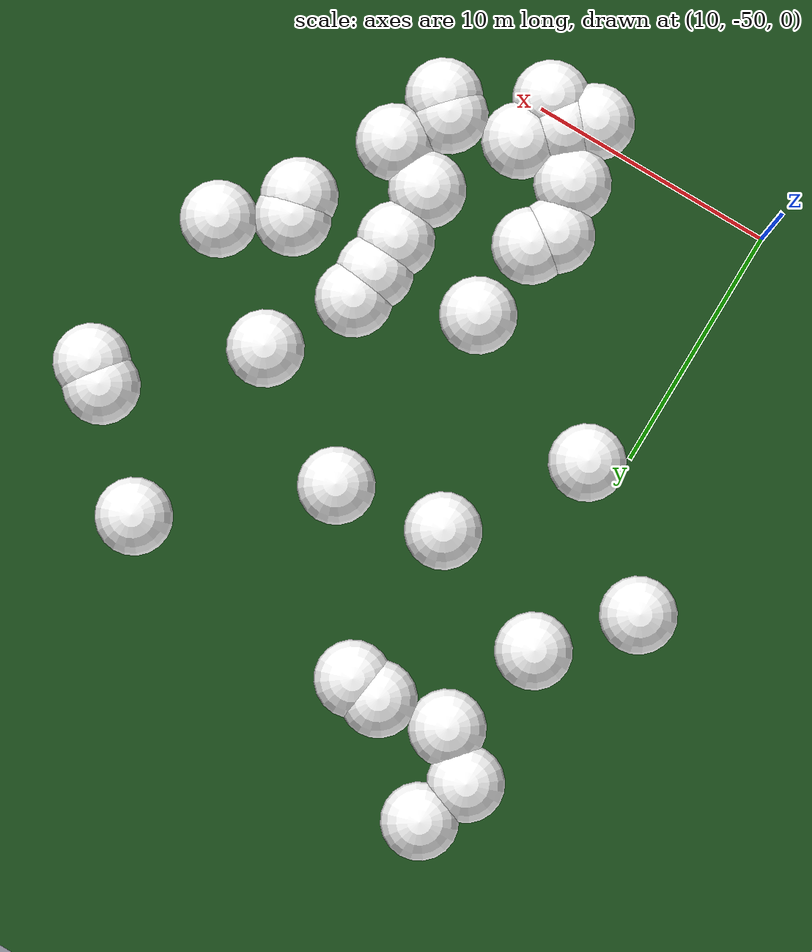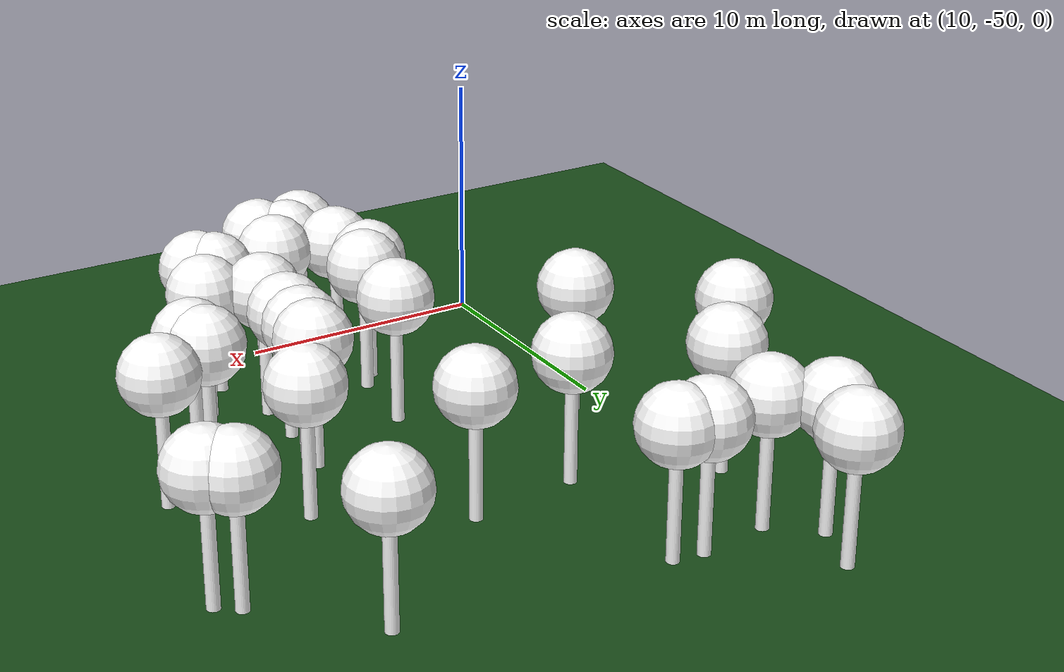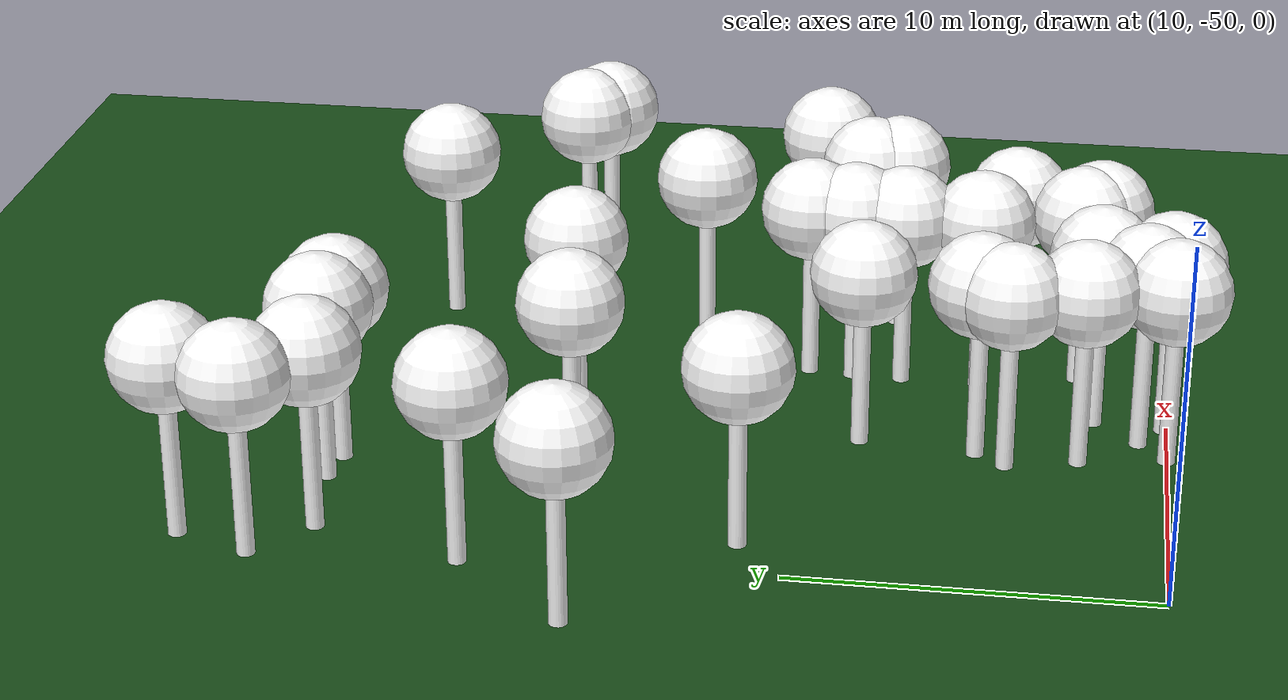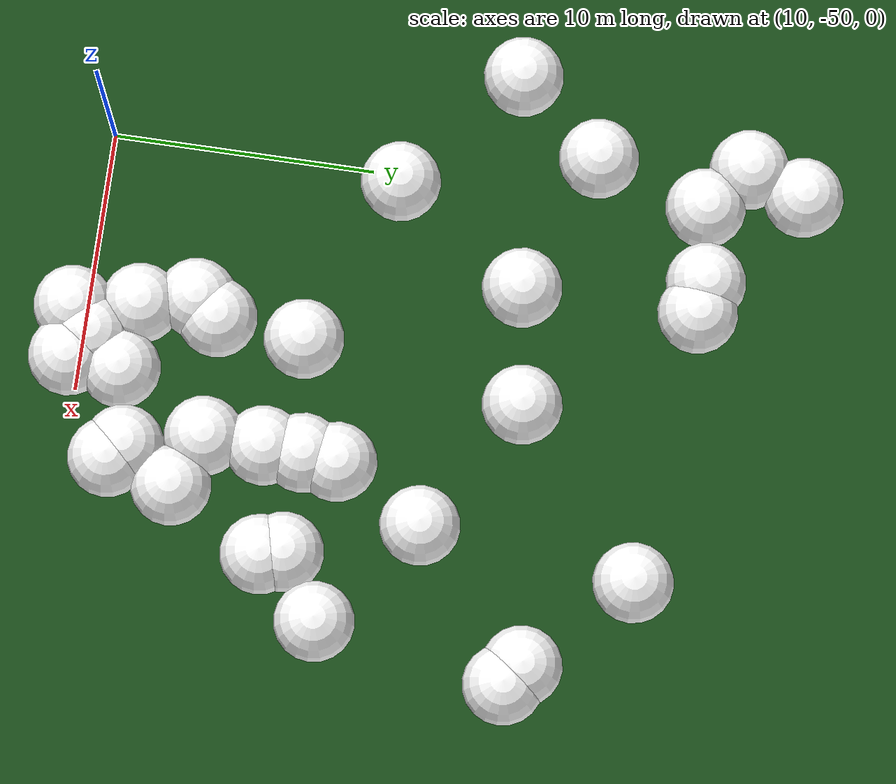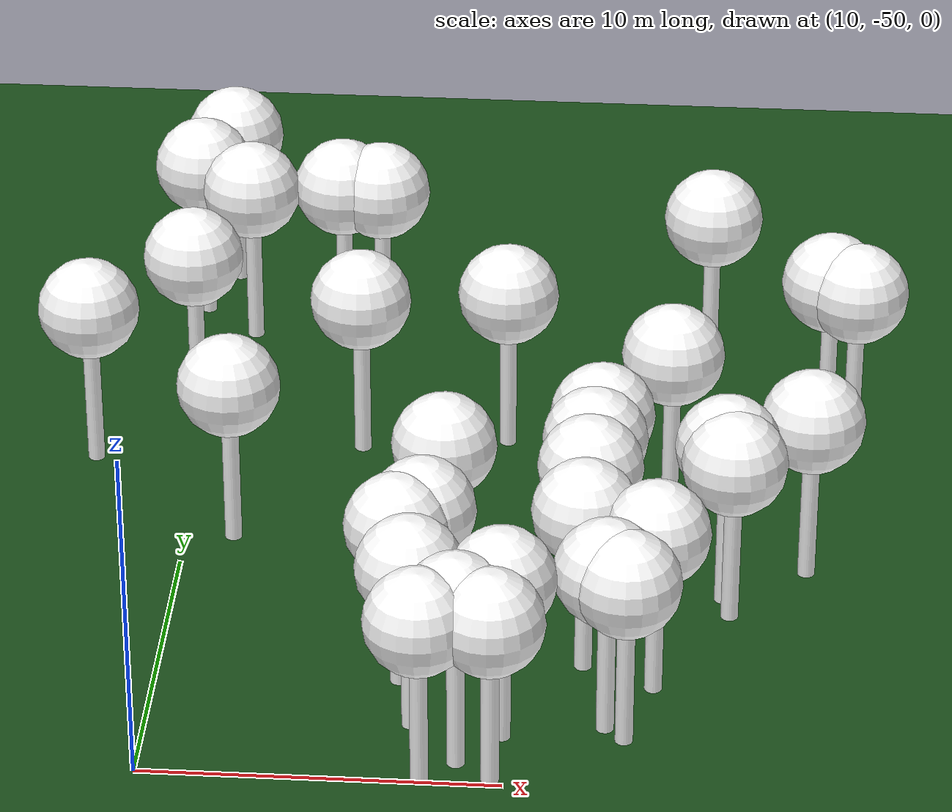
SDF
<sdf version="1.8">
 <world name="forest_world">
  <model name="tree_simple496">
   <static>1</static>
   <link name="link">
    <pose>0 0 0.1 0 -0 0</pose>
    <collision name="collision_trunk">
     <pose>0 0 2 0 -0 0</pose>
     <geometry><cylinder><radius>0.25</radius><length>4</length></cylinder></geometry>
    </collision>
    <collision name="collision_treetop">
     <pose>0 0 5.2 0 -0 0</pose>
     <geometry><sphere><radius>1.5</radius></sphere></geometry>
    </collision>
    <visual name="trunk">
     <pose>0 0 2 0 -0 0</pose>
     <geometry><cylinder><radius>0.25</radius><length>4</length></cylinder></geometry>
     <material>
      <ambient>0.5 0.5 0.5 1</ambient>
      <diffuse>1.0 1.0 1.0 1</diffuse>
      <specular>0.0 0.0 0.0 1</specular>
      <pbr>
       <metal>
        <albedo_map>../worlds/textures/tree_simple_trunk.jpg</albedo_map>
        <metalness>0.0</metalness>
        <roughness>0.8</roughness>
       </metal>
      </pbr>
     </material>
    </visual>
    <visual name="treetop">
     <pose>0 0 5.2 0 -0 0</pose>
     <geometry><sphere><radius>1.5</radius></sphere></geometry>
     <material>
      <ambient>0.5 0.5 0.5 1</ambient>
      <diffuse>1.0 1.0 1.0 1</diffuse>
      <specular>0.0 0.0 0.0 1</specular>
      <pbr>
       <metal>
        <albedo_map>../worlds/textures/tree_simple_treetop.jpg</albedo_map>
        <metalness>0.0</metalness>
        <roughness>0.9</roughness>
       </metal>
      </pbr>
     </material>
    </visual>
   </link>
   <pose>13.6194298432 -26.9856291803 0 0 -0 0</pose>
  </model>
  <model name="tree_simple484">
   <static>1</static>
   <link name="link">
    <pose>0 0 0.1 0 -0 0</pose>
    <collision name="collision_trunk">
     <pose>0 0 2 0 -0 0</pose>
     <geometry><cylinder><radius>0.25</radius><length>4</length></cylinder></geometry>
    </collision>
    <collision name="collision_treetop">
     <pose>0 0 5.2 0 -0 0</pose>
     <geometry><sphere><radius>1.5</radius></sphere></geometry>
    </collision>
    <visual name="trunk">
     <pose>0 0 2 0 -0 0</pose>
     <geometry><cylinder><radius>0.25</radius><length>4</length></cylinder></geometry>
     <material>
      <ambient>0.5 0.5 0.5 1</ambient>
      <diffuse>1.0 1.0 1.0 1</diffuse>
      <specular>0.0 0.0 0.0 1</specular>
      <pbr>
       <metal>
        <albedo_map>../worlds/textures/tree_simple_trunk.jpg</albedo_map>
        <metalness>0.0</metalness>
        <roughness>0.8</roughness>
       </metal>
      </pbr>
     </material>
    </visual>
    <visual name="treetop">
     <pose>0 0 5.2 0 -0 0</pose>
     <geometry><sphere><radius>1.5</radius></sphere></geometry>
     <material>
      <ambient>0.5 0.5 0.5 1</ambient>
      <diffuse>1.0 1.0 1.0 1</diffuse>
      <specular>0.0 0.0 0.0 1</specular>
      <pbr>
       <metal>
        <albedo_map>../worlds/textures/tree_simple_treetop.jpg</albedo_map>
        <metalness>0.0</metalness>
        <roughness>0.9</roughness>
       </metal>
      </pbr>
     </material>
    </visual>
   </link>
   <pose>19.8605088225 -47.9062304077 0 0 -0 0</pose>
  </model>
  <model name="tree_simple472">
   <static>1</static>
   <link name="link">
    <pose>0 0 0.1 0 -0 0</pose>
    <collision name="collision_trunk">
     <pose>0 0 2 0 -0 0</pose>
     <geometry><cylinder><radius>0.25</radius><length>4</length></cylinder></geometry>
    </collision>
    <collision name="collision_treetop">
     <pose>0 0 5.2 0 -0 0</pose>
     <geometry><sphere><radius>1.5</radius></sphere></geometry>
    </collision>
    <visual name="trunk">
     <pose>0 0 2 0 -0 0</pose>
     <geometry><cylinder><radius>0.25</radius><length>4</length></cylinder></geometry>
     <material>
      <ambient>0.5 0.5 0.5 1</ambient>
      <diffuse>1.0 1.0 1.0 1</diffuse>
      <specular>0.0 0.0 0.0 1</specular>
      <pbr>
       <metal>
        <albedo_map>../worlds/textures/tree_simple_trunk.jpg</albedo_map>
        <metalness>0.0</metalness>
        <roughness>0.8</roughness>
       </metal>
      </pbr>
     </material>
    </visual>
    <visual name="treetop">
     <pose>0 0 5.2 0 -0 0</pose>
     <geometry><sphere><radius>1.5</radius></sphere></geometry>
     <material>
      <ambient>0.5 0.5 0.5 1</ambient>
      <diffuse>1.0 1.0 1.0 1</diffuse>
      <specular>0.0 0.0 0.0 1</specular>
      <pbr>
       <metal>
        <albedo_map>../worlds/textures/tree_simple_treetop.jpg</albedo_map>
        <metalness>0.0</metalness>
        <roughness>0.9</roughness>
       </metal>
      </pbr>
     </material>
    </visual>
   </link>
   <pose>9.92228677952 -23.8303447852 0 0 -0 0</pose>
  </model>
  <model name="tree_simple469">
   <static>1</static>
   <link name="link">
    <pose>0 0 0.1 0 -0 0</pose>
    <collision name="collision_trunk">
     <pose>0 0 2 0 -0 0</pose>
     <geometry><cylinder><radius>0.25</radius><length>4</length></cylinder></geometry>
    </collision>
    <collision name="collision_treetop">
     <pose>0 0 5.2 0 -0 0</pose>
     <geometry><sphere><radius>1.5</radius></sphere></geometry>
    </collision>
    <visual name="trunk">
     <pose>0 0 2 0 -0 0</pose>
     <geometry><cylinder><radius>0.25</radius><length>4</length></cylinder></geometry>
     <material>
      <ambient>0.5 0.5 0.5 1</ambient>
      <diffuse>1.0 1.0 1.0 1</diffuse>
      <specular>0.0 0.0 0.0 1</specular>
      <pbr>
       <metal>
        <albedo_map>../worlds/textures/tree_simple_trunk.jpg</albedo_map>
        <metalness>0.0</metalness>
        <roughness>0.8</roughness>
       </metal>
      </pbr>
     </material>
    </visual>
    <visual name="treetop">
     <pose>0 0 5.2 0 -0 0</pose>
     <geometry><sphere><radius>1.5</radius></sphere></geometry>
     <material>
      <ambient>0.5 0.5 0.5 1</ambient>
      <diffuse>1.0 1.0 1.0 1</diffuse>
      <specular>0.0 0.0 0.0 1</specular>
      <pbr>
       <metal>
        <albedo_map>../worlds/textures/tree_simple_treetop.jpg</albedo_map>
        <metalness>0.0</metalness>
        <roughness>0.9</roughness>
       </metal>
      </pbr>
     </material>
    </visual>
   </link>
   <pose>28.6908934165 -31.7515844244 0 0 -0 0</pose>
  </model>
  <model name="tree_simple464">
   <static>1</static>
   <link name="link">
    <pose>0 0 0.1 0 -0 0</pose>
    <collision name="collision_trunk">
     <pose>0 0 2 0 -0 0</pose>
     <geometry><cylinder><radius>0.25</radius><length>4</length></cylinder></geometry>
    </collision>
    <collision name="collision_treetop">
     <pose>0 0 5.2 0 -0 0</pose>
     <geometry><sphere><radius>1.5</radius></sphere></geometry>
    </collision>
    <visual name="trunk">
     <pose>0 0 2 0 -0 0</pose>
     <geometry><cylinder><radius>0.25</radius><length>4</length></cylinder></geometry>
     <material>
      <ambient>0.5 0.5 0.5 1</ambient>
      <diffuse>1.0 1.0 1.0 1</diffuse>
      <specular>0.0 0.0 0.0 1</specular>
      <pbr>
       <metal>
        <albedo_map>../worlds/textures/tree_simple_trunk.jpg</albedo_map>
        <metalness>0.0</metalness>
        <roughness>0.8</roughness>
       </metal>
      </pbr>
     </material>
    </visual>
    <visual name="treetop">
     <pose>0 0 5.2 0 -0 0</pose>
     <geometry><sphere><radius>1.5</radius></sphere></geometry>
     <material>
      <ambient>0.5 0.5 0.5 1</ambient>
      <diffuse>1.0 1.0 1.0 1</diffuse>
      <specular>0.0 0.0 0.0 1</specular>
      <pbr>
       <metal>
        <albedo_map>../worlds/textures/tree_simple_treetop.jpg</albedo_map>
        <metalness>0.0</metalness>
        <roughness>0.9</roughness>
       </metal>
      </pbr>
     </material>
    </visual>
   </link>
   <pose>18.697132214 -49.1923863075 0 0 -0 0</pose>
  </model>
  <model name="tree_simple456">
   <static>1</static>
   <link name="link">
    <pose>0 0 0.1 0 -0 0</pose>
    <collision name="collision_trunk">
     <pose>0 0 2 0 -0 0</pose>
     <geometry><cylinder><radius>0.25</radius><length>4</length></cylinder></geometry>
    </collision>
    <collision name="collision_treetop">
     <pose>0 0 5.2 0 -0 0</pose>
     <geometry><sphere><radius>1.5</radius></sphere></geometry>
    </collision>
    <visual name="trunk">
     <pose>0 0 2 0 -0 0</pose>
     <geometry><cylinder><radius>0.25</radius><length>4</length></cylinder></geometry>
     <material>
      <ambient>0.5 0.5 0.5 1</ambient>
      <diffuse>1.0 1.0 1.0 1</diffuse>
      <specular>0.0 0.0 0.0 1</specular>
      <pbr>
       <metal>
        <albedo_map>../worlds/textures/tree_simple_trunk.jpg</albedo_map>
        <metalness>0.0</metalness>
        <roughness>0.8</roughness>
       </metal>
      </pbr>
     </material>
    </visual>
    <visual name="treetop">
     <pose>0 0 5.2 0 -0 0</pose>
     <geometry><sphere><radius>1.5</radius></sphere></geometry>
     <material>
      <ambient>0.5 0.5 0.5 1</ambient>
      <diffuse>1.0 1.0 1.0 1</diffuse>
      <specular>0.0 0.0 0.0 1</specular>
      <pbr>
       <metal>
        <albedo_map>../worlds/textures/tree_simple_treetop.jpg</albedo_map>
        <metalness>0.0</metalness>
        <roughness>0.9</roughness>
       </metal>
      </pbr>
     </material>
    </visual>
   </link>
   <pose>23.2076568155 -47.8591592767 0 0 -0 0</pose>
  </model>
  <model name="tree_simple451">
   <static>1</static>
   <link name="link">
    <pose>0 0 0.1 0 -0 0</pose>
    <collision name="collision_trunk">
     <pose>0 0 2 0 -0 0</pose>
     <geometry><cylinder><radius>0.25</radius><length>4</length></cylinder></geometry>
    </collision>
    <collision name="collision_treetop">
     <pose>0 0 5.2 0 -0 0</pose>
     <geometry><sphere><radius>1.5</radius></sphere></geometry>
    </collision>
    <visual name="trunk">
     <pose>0 0 2 0 -0 0</pose>
     <geometry><cylinder><radius>0.25</radius><length>4</length></cylinder></geometry>
     <material>
      <ambient>0.5 0.5 0.5 1</ambient>
      <diffuse>1.0 1.0 1.0 1</diffuse>
      <specular>0.0 0.0 0.0 1</specular>
      <pbr>
       <metal>
        <albedo_map>../worlds/textures/tree_simple_trunk.jpg</albedo_map>
        <metalness>0.0</metalness>
        <roughness>0.8</roughness>
       </metal>
      </pbr>
     </material>
    </visual>
    <visual name="treetop">
     <pose>0 0 5.2 0 -0 0</pose>
     <geometry><sphere><radius>1.5</radius></sphere></geometry>
     <material>
      <ambient>0.5 0.5 0.5 1</ambient>
      <diffuse>1.0 1.0 1.0 1</diffuse>
      <specular>0.0 0.0 0.0 1</specular>
      <pbr>
       <metal>
        <albedo_map>../worlds/textures/tree_simple_treetop.jpg</albedo_map>
        <metalness>0.0</metalness>
        <roughness>0.9</roughness>
       </metal>
      </pbr>
     </material>
    </visual>
   </link>
   <pose>25.0880879186 -28.1508348671 0 0 -0 0</pose>
  </model>
  <model name="tree_simple430">
   <static>1</static>
   <link name="link">
    <pose>0 0 0.1 0 -0 0</pose>
    <collision name="collision_trunk">
     <pose>0 0 2 0 -0 0</pose>
     <geometry><cylinder><radius>0.25</radius><length>4</length></cylinder></geometry>
    </collision>
    <collision name="collision_treetop">
     <pose>0 0 5.2 0 -0 0</pose>
     <geometry><sphere><radius>1.5</radius></sphere></geometry>
    </collision>
    <visual name="trunk">
     <pose>0 0 2 0 -0 0</pose>
     <geometry><cylinder><radius>0.25</radius><length>4</length></cylinder></geometry>
     <material>
      <ambient>0.5 0.5 0.5 1</ambient>
      <diffuse>1.0 1.0 1.0 1</diffuse>
      <specular>0.0 0.0 0.0 1</specular>
      <pbr>
       <metal>
        <albedo_map>../worlds/textures/tree_simple_trunk.jpg</albedo_map>
        <metalness>0.0</metalness>
        <roughness>0.8</roughness>
       </metal>
      </pbr>
     </material>
    </visual>
    <visual name="treetop">
     <pose>0 0 5.2 0 -0 0</pose>
     <geometry><sphere><radius>1.5</radius></sphere></geometry>
     <material>
      <ambient>0.5 0.5 0.5 1</ambient>
      <diffuse>1.0 1.0 1.0 1</diffuse>
      <specular>0.0 0.0 0.0 1</specular>
      <pbr>
       <metal>
        <albedo_map>../worlds/textures/tree_simple_treetop.jpg</albedo_map>
        <metalness>0.0</metalness>
        <roughness>0.9</roughness>
       </metal>
      </pbr>
     </material>
    </visual>
   </link>
   <pose>19.6675265043 -49.8829362896 0 0 -0 0</pose>
  </model>
  <model name="tree_simple427">
   <static>1</static>
   <link name="link">
    <pose>0 0 0.1 0 -0 0</pose>
    <collision name="collision_trunk">
     <pose>0 0 2 0 -0 0</pose>
     <geometry><cylinder><radius>0.25</radius><length>4</length></cylinder></geometry>
    </collision>
    <collision name="collision_treetop">
     <pose>0 0 5.2 0 -0 0</pose>
     <geometry><sphere><radius>1.5</radius></sphere></geometry>
    </collision>
    <visual name="trunk">
     <pose>0 0 2 0 -0 0</pose>
     <geometry><cylinder><radius>0.25</radius><length>4</length></cylinder></geometry>
     <material>
      <ambient>0.5 0.5 0.5 1</ambient>
      <diffuse>1.0 1.0 1.0 1</diffuse>
      <specular>0.0 0.0 0.0 1</specular>
      <pbr>
       <metal>
        <albedo_map>../worlds/textures/tree_simple_trunk.jpg</albedo_map>
        <metalness>0.0</metalness>
        <roughness>0.8</roughness>
       </metal>
      </pbr>
     </material>
    </visual>
    <visual name="treetop">
     <pose>0 0 5.2 0 -0 0</pose>
     <geometry><sphere><radius>1.5</radius></sphere></geometry>
     <material>
      <ambient>0.5 0.5 0.5 1</ambient>
      <diffuse>1.0 1.0 1.0 1</diffuse>
      <specular>0.0 0.0 0.0 1</specular>
      <pbr>
       <metal>
        <albedo_map>../worlds/textures/tree_simple_treetop.jpg</albedo_map>
        <metalness>0.0</metalness>
        <roughness>0.9</roughness>
       </metal>
      </pbr>
     </material>
    </visual>
   </link>
   <pose>17.8220319496 -41.3749782968 0 0 -0 0</pose>
  </model>
  <model name="tree_simple423">
   <static>1</static>
   <link name="link">
    <pose>0 0 0.1 0 -0 0</pose>
    <collision name="collision_trunk">
     <pose>0 0 2 0 -0 0</pose>
     <geometry><cylinder><radius>0.25</radius><length>4</length></cylinder></geometry>
    </collision>
    <collision name="collision_treetop">
     <pose>0 0 5.2 0 -0 0</pose>
     <geometry><sphere><radius>1.5</radius></sphere></geometry>
    </collision>
    <visual name="trunk">
     <pose>0 0 2 0 -0 0</pose>
     <geometry><cylinder><radius>0.25</radius><length>4</length></cylinder></geometry>
     <material>
      <ambient>0.5 0.5 0.5 1</ambient>
      <diffuse>1.0 1.0 1.0 1</diffuse>
      <specular>0.0 0.0 0.0 1</specular>
      <pbr>
       <metal>
        <albedo_map>../worlds/textures/tree_simple_trunk.jpg</albedo_map>
        <metalness>0.0</metalness>
        <roughness>0.8</roughness>
       </metal>
      </pbr>
     </material>
    </visual>
    <visual name="treetop">
     <pose>0 0 5.2 0 -0 0</pose>
     <geometry><sphere><radius>1.5</radius></sphere></geometry>
     <material>
      <ambient>0.5 0.5 0.5 1</ambient>
      <diffuse>1.0 1.0 1.0 1</diffuse>
      <specular>0.0 0.0 0.0 1</specular>
      <pbr>
       <metal>
        <albedo_map>../worlds/textures/tree_simple_treetop.jpg</albedo_map>
        <metalness>0.0</metalness>
        <roughness>0.9</roughness>
       </metal>
      </pbr>
     </material>
    </visual>
   </link>
   <pose>22.6666902857 -47.3463091406 0 0 -0 0</pose>
  </model>
  <model name="tree_simple399">
   <static>1</static>
   <link name="link">
    <pose>0 0 0.1 0 -0 0</pose>
    <collision name="collision_trunk">
     <pose>0 0 2 0 -0 0</pose>
     <geometry><cylinder><radius>0.25</radius><length>4</length></cylinder></geometry>
    </collision>
    <collision name="collision_treetop">
     <pose>0 0 5.2 0 -0 0</pose>
     <geometry><sphere><radius>1.5</radius></sphere></geometry>
    </collision>
    <visual name="trunk">
     <pose>0 0 2 0 -0 0</pose>
     <geometry><cylinder><radius>0.25</radius><length>4</length></cylinder></geometry>
     <material>
      <ambient>0.5 0.5 0.5 1</ambient>
      <diffuse>1.0 1.0 1.0 1</diffuse>
      <specular>0.0 0.0 0.0 1</specular>
      <pbr>
       <metal>
        <albedo_map>../worlds/textures/tree_simple_trunk.jpg</albedo_map>
        <metalness>0.0</metalness>
        <roughness>0.8</roughness>
       </metal>
      </pbr>
     </material>
    </visual>
    <visual name="treetop">
     <pose>0 0 5.2 0 -0 0</pose>
     <geometry><sphere><radius>1.5</radius></sphere></geometry>
     <material>
      <ambient>0.5 0.5 0.5 1</ambient>
      <diffuse>1.0 1.0 1.0 1</diffuse>
      <specular>0.0 0.0 0.0 1</specular>
      <pbr>
       <metal>
        <albedo_map>../worlds/textures/tree_simple_treetop.jpg</albedo_map>
        <metalness>0.0</metalness>
        <roughness>0.9</roughness>
       </metal>
      </pbr>
     </material>
    </visual>
   </link>
   <pose>28.1463540184 -39.4724503771 0 0 -0 0</pose>
  </model>
  <model name="tree_simple377">
   <static>1</static>
   <link name="link">
    <pose>0 0 0.1 0 -0 0</pose>
    <collision name="collision_trunk">
     <pose>0 0 2 0 -0 0</pose>
     <geometry><cylinder><radius>0.25</radius><length>4</length></cylinder></geometry>
    </collision>
    <collision name="collision_treetop">
     <pose>0 0 5.2 0 -0 0</pose>
     <geometry><sphere><radius>1.5</radius></sphere></geometry>
    </collision>
    <visual name="trunk">
     <pose>0 0 2 0 -0 0</pose>
     <geometry><cylinder><radius>0.25</radius><length>4</length></cylinder></geometry>
     <material>
      <ambient>0.5 0.5 0.5 1</ambient>
      <diffuse>1.0 1.0 1.0 1</diffuse>
      <specular>0.0 0.0 0.0 1</specular>
      <pbr>
       <metal>
        <albedo_map>../worlds/textures/tree_simple_trunk.jpg</albedo_map>
        <metalness>0.0</metalness>
        <roughness>0.8</roughness>
       </metal>
      </pbr>
     </material>
    </visual>
    <visual name="treetop">
     <pose>0 0 5.2 0 -0 0</pose>
     <geometry><sphere><radius>1.5</radius></sphere></geometry>
     <material>
      <ambient>0.5 0.5 0.5 1</ambient>
      <diffuse>1.0 1.0 1.0 1</diffuse>
      <specular>0.0 0.0 0.0 1</specular>
      <pbr>
       <metal>
        <albedo_map>../worlds/textures/tree_simple_treetop.jpg</albedo_map>
        <metalness>0.0</metalness>
        <roughness>0.9</roughness>
       </metal>
      </pbr>
     </material>
    </visual>
   </link>
   <pose>10.8205708978 -27.3699142702 0 0 -0 0</pose>
  </model>
  <model name="tree_simple355">
   <static>1</static>
   <link name="link">
    <pose>0 0 0.1 0 -0 0</pose>
    <collision name="collision_trunk">
     <pose>0 0 2 0 -0 0</pose>
     <geometry><cylinder><radius>0.25</radius><length>4</length></cylinder></geometry>
    </collision>
    <collision name="collision_treetop">
     <pose>0 0 5.2 0 -0 0</pose>
     <geometry><sphere><radius>1.5</radius></sphere></geometry>
    </collision>
    <visual name="trunk">
     <pose>0 0 2 0 -0 0</pose>
     <geometry><cylinder><radius>0.25</radius><length>4</length></cylinder></geometry>
     <material>
      <ambient>0.5 0.5 0.5 1</ambient>
      <diffuse>1.0 1.0 1.0 1</diffuse>
      <specular>0.0 0.0 0.0 1</specular>
      <pbr>
       <metal>
        <albedo_map>../worlds/textures/tree_simple_trunk.jpg</albedo_map>
        <metalness>0.0</metalness>
        <roughness>0.8</roughness>
       </metal>
      </pbr>
     </material>
    </visual>
    <visual name="treetop">
     <pose>0 0 5.2 0 -0 0</pose>
     <geometry><sphere><radius>1.5</radius></sphere></geometry>
     <material>
      <ambient>0.5 0.5 0.5 1</ambient>
      <diffuse>1.0 1.0 1.0 1</diffuse>
      <specular>0.0 0.0 0.0 1</specular>
      <pbr>
       <metal>
        <albedo_map>../worlds/textures/tree_simple_treetop.jpg</albedo_map>
        <metalness>0.0</metalness>
        <roughness>0.9</roughness>
       </metal>
      </pbr>
     </material>
    </visual>
   </link>
   <pose>25.975286884 -41.7874404901 0 0 -0 0</pose>
  </model>
  <model name="tree_simple329">
   <static>1</static>
   <link name="link">
    <pose>0 0 0.1 0 -0 0</pose>
    <collision name="collision_trunk">
     <pose>0 0 2 0 -0 0</pose>
     <geometry><cylinder><radius>0.25</radius><length>4</length></cylinder></geometry>
    </collision>
    <collision name="collision_treetop">
     <pose>0 0 5.2 0 -0 0</pose>
     <geometry><sphere><radius>1.5</radius></sphere></geometry>
    </collision>
    <visual name="trunk">
     <pose>0 0 2 0 -0 0</pose>
     <geometry><cylinder><radius>0.25</radius><length>4</length></cylinder></geometry>
     <material>
      <ambient>0.5 0.5 0.5 1</ambient>
      <diffuse>1.0 1.0 1.0 1</diffuse>
      <specular>0.0 0.0 0.0 1</specular>
      <pbr>
       <metal>
        <albedo_map>../worlds/textures/tree_simple_trunk.jpg</albedo_map>
        <metalness>0.0</metalness>
        <roughness>0.8</roughness>
       </metal>
      </pbr>
     </material>
    </visual>
    <visual name="treetop">
     <pose>0 0 5.2 0 -0 0</pose>
     <geometry><sphere><radius>1.5</radius></sphere></geometry>
     <material>
      <ambient>0.5 0.5 0.5 1</ambient>
      <diffuse>1.0 1.0 1.0 1</diffuse>
      <specular>0.0 0.0 0.0 1</specular>
      <pbr>
       <metal>
        <albedo_map>../worlds/textures/tree_simple_treetop.jpg</albedo_map>
        <metalness>0.0</metalness>
        <roughness>0.9</roughness>
       </metal>
      </pbr>
     </material>
    </visual>
   </link>
   <pose>22.038430334 -40.7859522783 0 0 -0 0</pose>
  </model>
  <model name="tree_simple281">
   <static>1</static>
   <link name="link">
    <pose>0 0 0.1 0 -0 0</pose>
    <collision name="collision_trunk">
     <pose>0 0 2 0 -0 0</pose>
     <geometry><cylinder><radius>0.25</radius><length>4</length></cylinder></geometry>
    </collision>
    <collision name="collision_treetop">
     <pose>0 0 5.2 0 -0 0</pose>
     <geometry><sphere><radius>1.5</radius></sphere></geometry>
    </collision>
    <visual name="trunk">
     <pose>0 0 2 0 -0 0</pose>
     <geometry><cylinder><radius>0.25</radius><length>4</length></cylinder></geometry>
     <material>
      <ambient>0.5 0.5 0.5 1</ambient>
      <diffuse>1.0 1.0 1.0 1</diffuse>
      <specular>0.0 0.0 0.0 1</specular>
      <pbr>
       <metal>
        <albedo_map>../worlds/textures/tree_simple_trunk.jpg</albedo_map>
        <metalness>0.0</metalness>
        <roughness>0.8</roughness>
       </metal>
      </pbr>
     </material>
    </visual>
    <visual name="treetop">
     <pose>0 0 5.2 0 -0 0</pose>
     <geometry><sphere><radius>1.5</radius></sphere></geometry>
     <material>
      <ambient>0.5 0.5 0.5 1</ambient>
      <diffuse>1.0 1.0 1.0 1</diffuse>
      <specular>0.0 0.0 0.0 1</specular>
      <pbr>
       <metal>
        <albedo_map>../worlds/textures/tree_simple_treetop.jpg</albedo_map>
        <metalness>0.0</metalness>
        <roughness>0.9</roughness>
       </metal>
      </pbr>
     </material>
    </visual>
   </link>
   <pose>17.7631793605 -49.9798329039 0 0 -0 0</pose>
  </model>
  <model name="tree_simple249">
   <static>1</static>
   <link name="link">
    <pose>0 0 0.1 0 -0 0</pose>
    <collision name="collision_trunk">
     <pose>0 0 2 0 -0 0</pose>
     <geometry><cylinder><radius>0.25</radius><length>4</length></cylinder></geometry>
    </collision>
    <collision name="collision_treetop">
     <pose>0 0 5.2 0 -0 0</pose>
     <geometry><sphere><radius>1.5</radius></sphere></geometry>
    </collision>
    <visual name="trunk">
     <pose>0 0 2 0 -0 0</pose>
     <geometry><cylinder><radius>0.25</radius><length>4</length></cylinder></geometry>
     <material>
      <ambient>0.5 0.5 0.5 1</ambient>
      <diffuse>1.0 1.0 1.0 1</diffuse>
      <specular>0.0 0.0 0.0 1</specular>
      <pbr>
       <metal>
        <albedo_map>../worlds/textures/tree_simple_trunk.jpg</albedo_map>
        <metalness>0.0</metalness>
        <roughness>0.8</roughness>
       </metal>
      </pbr>
     </material>
    </visual>
    <visual name="treetop">
     <pose>0 0 5.2 0 -0 0</pose>
     <geometry><sphere><radius>1.5</radius></sphere></geometry>
     <material>
      <ambient>0.5 0.5 0.5 1</ambient>
      <diffuse>1.0 1.0 1.0 1</diffuse>
      <specular>0.0 0.0 0.0 1</specular>
      <pbr>
       <metal>
        <albedo_map>../worlds/textures/tree_simple_treetop.jpg</albedo_map>
        <metalness>0.0</metalness>
        <roughness>0.9</roughness>
       </metal>
      </pbr>
     </material>
    </visual>
   </link>
   <pose>9.52111231685 -31.538100668 0 0 -0 0</pose>
  </model>
  <model name="tree_simple233">
   <static>1</static>
   <link name="link">
    <pose>0 0 0.1 0 -0 0</pose>
    <collision name="collision_trunk">
     <pose>0 0 2 0 -0 0</pose>
     <geometry><cylinder><radius>0.25</radius><length>4</length></cylinder></geometry>
    </collision>
    <collision name="collision_treetop">
     <pose>0 0 5.2 0 -0 0</pose>
     <geometry><sphere><radius>1.5</radius></sphere></geometry>
    </collision>
    <visual name="trunk">
     <pose>0 0 2 0 -0 0</pose>
     <geometry><cylinder><radius>0.25</radius><length>4</length></cylinder></geometry>
     <material>
      <ambient>0.5 0.5 0.5 1</ambient>
      <diffuse>1.0 1.0 1.0 1</diffuse>
      <specular>0.0 0.0 0.0 1</specular>
      <pbr>
       <metal>
        <albedo_map>../worlds/textures/tree_simple_trunk.jpg</albedo_map>
        <metalness>0.0</metalness>
        <roughness>0.8</roughness>
       </metal>
      </pbr>
     </material>
    </visual>
    <visual name="treetop">
     <pose>0 0 5.2 0 -0 0</pose>
     <geometry><sphere><radius>1.5</radius></sphere></geometry>
     <material>
      <ambient>0.5 0.5 0.5 1</ambient>
      <diffuse>1.0 1.0 1.0 1</diffuse>
      <specular>0.0 0.0 0.0 1</specular>
      <pbr>
       <metal>
        <albedo_map>../worlds/textures/tree_simple_treetop.jpg</albedo_map>
        <metalness>0.0</metalness>
        <roughness>0.9</roughness>
       </metal>
      </pbr>
     </material>
    </visual>
   </link>
   <pose>21.929125889 -44.4760714013 0 0 -0 0</pose>
  </model>
  <model name="tree_simple215">
   <static>1</static>
   <link name="link">
    <pose>0 0 0.1 0 -0 0</pose>
    <collision name="collision_trunk">
     <pose>0 0 2 0 -0 0</pose>
     <geometry><cylinder><radius>0.25</radius><length>4</length></cylinder></geometry>
    </collision>
    <collision name="collision_treetop">
     <pose>0 0 5.2 0 -0 0</pose>
     <geometry><sphere><radius>1.5</radius></sphere></geometry>
    </collision>
    <visual name="trunk">
     <pose>0 0 2 0 -0 0</pose>
     <geometry><cylinder><radius>0.25</radius><length>4</length></cylinder></geometry>
     <material>
      <ambient>0.5 0.5 0.5 1</ambient>
      <diffuse>1.0 1.0 1.0 1</diffuse>
      <specular>0.0 0.0 0.0 1</specular>
      <pbr>
       <metal>
        <albedo_map>../worlds/textures/tree_simple_trunk.jpg</albedo_map>
        <metalness>0.0</metalness>
        <roughness>0.8</roughness>
       </metal>
      </pbr>
     </material>
    </visual>
    <visual name="treetop">
     <pose>0 0 5.2 0 -0 0</pose>
     <geometry><sphere><radius>1.5</radius></sphere></geometry>
     <material>
      <ambient>0.5 0.5 0.5 1</ambient>
      <diffuse>1.0 1.0 1.0 1</diffuse>
      <specular>0.0 0.0 0.0 1</specular>
      <pbr>
       <metal>
        <albedo_map>../worlds/textures/tree_simple_treetop.jpg</albedo_map>
        <metalness>0.0</metalness>
        <roughness>0.9</roughness>
       </metal>
      </pbr>
     </material>
    </visual>
   </link>
   <pose>6.8108440726 -34.7298391892 0 0 -0 0</pose>
  </model>
  <model name="tree_simple169">
   <static>1</static>
   <link name="link">
    <pose>0 0 0.1 0 -0 0</pose>
    <collision name="collision_trunk">
     <pose>0 0 2 0 -0 0</pose>
     <geometry><cylinder><radius>0.25</radius><length>4</length></cylinder></geometry>
    </collision>
    <collision name="collision_treetop">
     <pose>0 0 5.2 0 -0 0</pose>
     <geometry><sphere><radius>1.5</radius></sphere></geometry>
    </collision>
    <visual name="trunk">
     <pose>0 0 2 0 -0 0</pose>
     <geometry><cylinder><radius>0.25</radius><length>4</length></cylinder></geometry>
     <material>
      <ambient>0.5 0.5 0.5 1</ambient>
      <diffuse>1.0 1.0 1.0 1</diffuse>
      <specular>0.0 0.0 0.0 1</specular>
      <pbr>
       <metal>
        <albedo_map>../worlds/textures/tree_simple_trunk.jpg</albedo_map>
        <metalness>0.0</metalness>
        <roughness>0.8</roughness>
       </metal>
      </pbr>
     </material>
    </visual>
    <visual name="treetop">
     <pose>0 0 5.2 0 -0 0</pose>
     <geometry><sphere><radius>1.5</radius></sphere></geometry>
     <material>
      <ambient>0.5 0.5 0.5 1</ambient>
      <diffuse>1.0 1.0 1.0 1</diffuse>
      <specular>0.0 0.0 0.0 1</specular>
      <pbr>
       <metal>
        <albedo_map>../worlds/textures/tree_simple_treetop.jpg</albedo_map>
        <metalness>0.0</metalness>
        <roughness>0.9</roughness>
       </metal>
      </pbr>
     </material>
    </visual>
   </link>
   <pose>25.7710646255 -40.9498520998 0 0 -0 0</pose>
  </model>
  <model name="tree_simple168">
   <static>1</static>
   <link name="link">
    <pose>0 0 0.1 0 -0 0</pose>
    <collision name="collision_trunk">
     <pose>0 0 2 0 -0 0</pose>
     <geometry><cylinder><radius>0.25</radius><length>4</length></cylinder></geometry>
    </collision>
    <collision name="collision_treetop">
     <pose>0 0 5.2 0 -0 0</pose>
     <geometry><sphere><radius>1.5</radius></sphere></geometry>
    </collision>
    <visual name="trunk">
     <pose>0 0 2 0 -0 0</pose>
     <geometry><cylinder><radius>0.25</radius><length>4</length></cylinder></geometry>
     <material>
      <ambient>0.5 0.5 0.5 1</ambient>
      <diffuse>1.0 1.0 1.0 1</diffuse>
      <specular>0.0 0.0 0.0 1</specular>
      <pbr>
       <metal>
        <albedo_map>../worlds/textures/tree_simple_trunk.jpg</albedo_map>
        <metalness>0.0</metalness>
        <roughness>0.8</roughness>
       </metal>
      </pbr>
     </material>
    </visual>
    <visual name="treetop">
     <pose>0 0 5.2 0 -0 0</pose>
     <geometry><sphere><radius>1.5</radius></sphere></geometry>
     <material>
      <ambient>0.5 0.5 0.5 1</ambient>
      <diffuse>1.0 1.0 1.0 1</diffuse>
      <specular>0.0 0.0 0.0 1</specular>
      <pbr>
       <metal>
        <albedo_map>../worlds/textures/tree_simple_treetop.jpg</albedo_map>
        <metalness>0.0</metalness>
        <roughness>0.9</roughness>
       </metal>
      </pbr>
     </material>
    </visual>
   </link>
   <pose>14.8234440125 -27.1346741382 0 0 -0 0</pose>
  </model>
  <model name="tree_simple167">
   <static>1</static>
   <link name="link">
    <pose>0 0 0.1 0 -0 0</pose>
    <collision name="collision_trunk">
     <pose>0 0 2 0 -0 0</pose>
     <geometry><cylinder><radius>0.25</radius><length>4</length></cylinder></geometry>
    </collision>
    <collision name="collision_treetop">
     <pose>0 0 5.2 0 -0 0</pose>
     <geometry><sphere><radius>1.5</radius></sphere></geometry>
    </collision>
    <visual name="trunk">
     <pose>0 0 2 0 -0 0</pose>
     <geometry><cylinder><radius>0.25</radius><length>4</length></cylinder></geometry>
     <material>
      <ambient>0.5 0.5 0.5 1</ambient>
      <diffuse>1.0 1.0 1.0 1</diffuse>
      <specular>0.0 0.0 0.0 1</specular>
      <pbr>
       <metal>
        <albedo_map>../worlds/textures/tree_simple_trunk.jpg</albedo_map>
        <metalness>0.0</metalness>
        <roughness>0.8</roughness>
       </metal>
      </pbr>
     </material>
    </visual>
    <visual name="treetop">
     <pose>0 0 5.2 0 -0 0</pose>
     <geometry><sphere><radius>1.5</radius></sphere></geometry>
     <material>
      <ambient>0.5 0.5 0.5 1</ambient>
      <diffuse>1.0 1.0 1.0 1</diffuse>
      <specular>0.0 0.0 0.0 1</specular>
      <pbr>
       <metal>
        <albedo_map>../worlds/textures/tree_simple_treetop.jpg</albedo_map>
        <metalness>0.0</metalness>
        <roughness>0.9</roughness>
       </metal>
      </pbr>
     </material>
    </visual>
   </link>
   <pose>14.7724548693 -33.6841584831 0 0 -0 0</pose>
  </model>
  <model name="tree_simple153">
   <static>1</static>
   <link name="link">
    <pose>0 0 0.1 0 -0 0</pose>
    <collision name="collision_trunk">
     <pose>0 0 2 0 -0 0</pose>
     <geometry><cylinder><radius>0.25</radius><length>4</length></cylinder></geometry>
    </collision>
    <collision name="collision_treetop">
     <pose>0 0 5.2 0 -0 0</pose>
     <geometry><sphere><radius>1.5</radius></sphere></geometry>
    </collision>
    <visual name="trunk">
     <pose>0 0 2 0 -0 0</pose>
     <geometry><cylinder><radius>0.25</radius><length>4</length></cylinder></geometry>
     <material>
      <ambient>0.5 0.5 0.5 1</ambient>
      <diffuse>1.0 1.0 1.0 1</diffuse>
      <specular>0.0 0.0 0.0 1</specular>
      <pbr>
       <metal>
        <albedo_map>../worlds/textures/tree_simple_trunk.jpg</albedo_map>
        <metalness>0.0</metalness>
        <roughness>0.8</roughness>
       </metal>
      </pbr>
     </material>
    </visual>
    <visual name="treetop">
     <pose>0 0 5.2 0 -0 0</pose>
     <geometry><sphere><radius>1.5</radius></sphere></geometry>
     <material>
      <ambient>0.5 0.5 0.5 1</ambient>
      <diffuse>1.0 1.0 1.0 1</diffuse>
      <specular>0.0 0.0 0.0 1</specular>
      <pbr>
       <metal>
        <albedo_map>../worlds/textures/tree_simple_treetop.jpg</albedo_map>
        <metalness>0.0</metalness>
        <roughness>0.9</roughness>
       </metal>
      </pbr>
     </material>
    </visual>
   </link>
   <pose>24.0970841452 -36.1585269214 0 0 -0 0</pose>
  </model>
  <model name="tree_simple139">
   <static>1</static>
   <link name="link">
    <pose>0 0 0.1 0 -0 0</pose>
    <collision name="collision_trunk">
     <pose>0 0 2 0 -0 0</pose>
     <geometry><cylinder><radius>0.25</radius><length>4</length></cylinder></geometry>
    </collision>
    <collision name="collision_treetop">
     <pose>0 0 5.2 0 -0 0</pose>
     <geometry><sphere><radius>1.5</radius></sphere></geometry>
    </collision>
    <visual name="trunk">
     <pose>0 0 2 0 -0 0</pose>
     <geometry><cylinder><radius>0.25</radius><length>4</length></cylinder></geometry>
     <material>
      <ambient>0.5 0.5 0.5 1</ambient>
      <diffuse>1.0 1.0 1.0 1</diffuse>
      <specular>0.0 0.0 0.0 1</specular>
      <pbr>
       <metal>
        <albedo_map>../worlds/textures/tree_simple_trunk.jpg</albedo_map>
        <metalness>0.0</metalness>
        <roughness>0.8</roughness>
       </metal>
      </pbr>
     </material>
    </visual>
    <visual name="treetop">
     <pose>0 0 5.2 0 -0 0</pose>
     <geometry><sphere><radius>1.5</radius></sphere></geometry>
     <material>
      <ambient>0.5 0.5 0.5 1</ambient>
      <diffuse>1.0 1.0 1.0 1</diffuse>
      <specular>0.0 0.0 0.0 1</specular>
      <pbr>
       <metal>
        <albedo_map>../worlds/textures/tree_simple_treetop.jpg</albedo_map>
        <metalness>0.0</metalness>
        <roughness>0.9</roughness>
       </metal>
      </pbr>
     </material>
    </visual>
   </link>
   <pose>16.853661786 -45.5057571818 0 0 -0 0</pose>
  </model>
  <model name="tree_simple123">
   <static>1</static>
   <link name="link">
    <pose>0 0 0.1 0 -0 0</pose>
    <collision name="collision_trunk">
     <pose>0 0 2 0 -0 0</pose>
     <geometry><cylinder><radius>0.25</radius><length>4</length></cylinder></geometry>
    </collision>
    <collision name="collision_treetop">
     <pose>0 0 5.2 0 -0 0</pose>
     <geometry><sphere><radius>1.5</radius></sphere></geometry>
    </collision>
    <visual name="trunk">
     <pose>0 0 2 0 -0 0</pose>
     <geometry><cylinder><radius>0.25</radius><length>4</length></cylinder></geometry>
     <material>
      <ambient>0.5 0.5 0.5 1</ambient>
      <diffuse>1.0 1.0 1.0 1</diffuse>
      <specular>0.0 0.0 0.0 1</specular>
      <pbr>
       <metal>
        <albedo_map>../worlds/textures/tree_simple_trunk.jpg</albedo_map>
        <metalness>0.0</metalness>
        <roughness>0.8</roughness>
       </metal>
      </pbr>
     </material>
    </visual>
    <visual name="treetop">
     <pose>0 0 5.2 0 -0 0</pose>
     <geometry><sphere><radius>1.5</radius></sphere></geometry>
     <material>
      <ambient>0.5 0.5 0.5 1</ambient>
      <diffuse>1.0 1.0 1.0 1</diffuse>
      <specular>0.0 0.0 0.0 1</specular>
      <pbr>
       <metal>
        <albedo_map>../worlds/textures/tree_simple_treetop.jpg</albedo_map>
        <metalness>0.0</metalness>
        <roughness>0.9</roughness>
       </metal>
      </pbr>
     </material>
    </visual>
   </link>
   <pose>17.3351285606 -47.5264442332 0 0 -0 0</pose>
  </model>
  <model name="tree_simple115">
   <static>1</static>
   <link name="link">
    <pose>0 0 0.1 0 -0 0</pose>
    <collision name="collision_trunk">
     <pose>0 0 2 0 -0 0</pose>
     <geometry><cylinder><radius>0.25</radius><length>4</length></cylinder></geometry>
    </collision>
    <collision name="collision_treetop">
     <pose>0 0 5.2 0 -0 0</pose>
     <geometry><sphere><radius>1.5</radius></sphere></geometry>
    </collision>
    <visual name="trunk">
     <pose>0 0 2 0 -0 0</pose>
     <geometry><cylinder><radius>0.25</radius><length>4</length></cylinder></geometry>
     <material>
      <ambient>0.5 0.5 0.5 1</ambient>
      <diffuse>1.0 1.0 1.0 1</diffuse>
      <specular>0.0 0.0 0.0 1</specular>
      <pbr>
       <metal>
        <albedo_map>../worlds/textures/tree_simple_trunk.jpg</albedo_map>
        <metalness>0.0</metalness>
        <roughness>0.8</roughness>
       </metal>
      </pbr>
     </material>
    </visual>
    <visual name="treetop">
     <pose>0 0 5.2 0 -0 0</pose>
     <geometry><sphere><radius>1.5</radius></sphere></geometry>
     <material>
      <ambient>0.5 0.5 0.5 1</ambient>
      <diffuse>1.0 1.0 1.0 1</diffuse>
      <specular>0.0 0.0 0.0 1</specular>
      <pbr>
       <metal>
        <albedo_map>../worlds/textures/tree_simple_treetop.jpg</albedo_map>
        <metalness>0.0</metalness>
        <roughness>0.9</roughness>
       </metal>
      </pbr>
     </material>
    </visual>
   </link>
   <pose>23.9238582862 -45.4027076844 0 0 -0 0</pose>
  </model>
  <model name="tree_simple96">
   <static>1</static>
   <link name="link">
    <pose>0 0 0.1 0 -0 0</pose>
    <collision name="collision_trunk">
     <pose>0 0 2 0 -0 0</pose>
     <geometry><cylinder><radius>0.25</radius><length>4</length></cylinder></geometry>
    </collision>
    <collision name="collision_treetop">
     <pose>0 0 5.2 0 -0 0</pose>
     <geometry><sphere><radius>1.5</radius></sphere></geometry>
    </collision>
    <visual name="trunk">
     <pose>0 0 2 0 -0 0</pose>
     <geometry><cylinder><radius>0.25</radius><length>4</length></cylinder></geometry>
     <material>
      <ambient>0.5 0.5 0.5 1</ambient>
      <diffuse>1.0 1.0 1.0 1</diffuse>
      <specular>0.0 0.0 0.0 1</specular>
      <pbr>
       <metal>
        <albedo_map>../worlds/textures/tree_simple_trunk.jpg</albedo_map>
        <metalness>0.0</metalness>
        <roughness>0.8</roughness>
       </metal>
      </pbr>
     </material>
    </visual>
    <visual name="treetop">
     <pose>0 0 5.2 0 -0 0</pose>
     <geometry><sphere><radius>1.5</radius></sphere></geometry>
     <material>
      <ambient>0.5 0.5 0.5 1</ambient>
      <diffuse>1.0 1.0 1.0 1</diffuse>
      <specular>0.0 0.0 0.0 1</specular>
      <pbr>
       <metal>
        <albedo_map>../worlds/textures/tree_simple_treetop.jpg</albedo_map>
        <metalness>0.0</metalness>
        <roughness>0.9</roughness>
       </metal>
      </pbr>
     </material>
    </visual>
   </link>
   <pose>17.4748828609 -44.6574809929 0 0 -0 0</pose>
  </model>
  <model name="tree_simple52">
   <static>1</static>
   <link name="link">
    <pose>0 0 0.1 0 -0 0</pose>
    <collision name="collision_trunk">
     <pose>0 0 2 0 -0 0</pose>
     <geometry><cylinder><radius>0.25</radius><length>4</length></cylinder></geometry>
    </collision>
    <collision name="collision_treetop">
     <pose>0 0 5.2 0 -0 0</pose>
     <geometry><sphere><radius>1.5</radius></sphere></geometry>
    </collision>
    <visual name="trunk">
     <pose>0 0 2 0 -0 0</pose>
     <geometry><cylinder><radius>0.25</radius><length>4</length></cylinder></geometry>
     <material>
      <ambient>0.5 0.5 0.5 1</ambient>
      <diffuse>1.0 1.0 1.0 1</diffuse>
      <specular>0.0 0.0 0.0 1</specular>
      <pbr>
       <metal>
        <albedo_map>../worlds/textures/tree_simple_trunk.jpg</albedo_map>
        <metalness>0.0</metalness>
        <roughness>0.8</roughness>
       </metal>
      </pbr>
     </material>
    </visual>
    <visual name="treetop">
     <pose>0 0 5.2 0 -0 0</pose>
     <geometry><sphere><radius>1.5</radius></sphere></geometry>
     <material>
      <ambient>0.5 0.5 0.5 1</ambient>
      <diffuse>1.0 1.0 1.0 1</diffuse>
      <specular>0.0 0.0 0.0 1</specular>
      <pbr>
       <metal>
        <albedo_map>../worlds/textures/tree_simple_treetop.jpg</albedo_map>
        <metalness>0.0</metalness>
        <roughness>0.9</roughness>
       </metal>
      </pbr>
     </material>
    </visual>
   </link>
   <pose>22.195457895 -39.5072380211 0 0 -0 0</pose>
  </model>
  <model name="tree_simple42">
   <static>1</static>
   <link name="link">
    <pose>0 0 0.1 0 -0 0</pose>
    <collision name="collision_trunk">
     <pose>0 0 2 0 -0 0</pose>
     <geometry><cylinder><radius>0.25</radius><length>4</length></cylinder></geometry>
    </collision>
    <collision name="collision_treetop">
     <pose>0 0 5.2 0 -0 0</pose>
     <geometry><sphere><radius>1.5</radius></sphere></geometry>
    </collision>
    <visual name="trunk">
     <pose>0 0 2 0 -0 0</pose>
     <geometry><cylinder><radius>0.25</radius><length>4</length></cylinder></geometry>
     <material>
      <ambient>0.5 0.5 0.5 1</ambient>
      <diffuse>1.0 1.0 1.0 1</diffuse>
      <specular>0.0 0.0 0.0 1</specular>
      <pbr>
       <metal>
        <albedo_map>../worlds/textures/tree_simple_trunk.jpg</albedo_map>
        <metalness>0.0</metalness>
        <roughness>0.8</roughness>
       </metal>
      </pbr>
     </material>
    </visual>
    <visual name="treetop">
     <pose>0 0 5.2 0 -0 0</pose>
     <geometry><sphere><radius>1.5</radius></sphere></geometry>
     <material>
      <ambient>0.5 0.5 0.5 1</ambient>
      <diffuse>1.0 1.0 1.0 1</diffuse>
      <specular>0.0 0.0 0.0 1</specular>
      <pbr>
       <metal>
        <albedo_map>../worlds/textures/tree_simple_treetop.jpg</albedo_map>
        <metalness>0.0</metalness>
        <roughness>0.9</roughness>
       </metal>
      </pbr>
     </material>
    </visual>
   </link>
   <pose>19.1195153572 -33.0751098478 0 0 -0 0</pose>
  </model>
  <model name="tree_simple38">
   <static>1</static>
   <link name="link">
    <pose>0 0 0.1 0 -0 0</pose>
    <collision name="collision_trunk">
     <pose>0 0 2 0 -0 0</pose>
     <geometry><cylinder><radius>0.25</radius><length>4</length></cylinder></geometry>
    </collision>
    <collision name="collision_treetop">
     <pose>0 0 5.2 0 -0 0</pose>
     <geometry><sphere><radius>1.5</radius></sphere></geometry>
    </collision>
    <visual name="trunk">
     <pose>0 0 2 0 -0 0</pose>
     <geometry><cylinder><radius>0.25</radius><length>4</length></cylinder></geometry>
     <material>
      <ambient>0.5 0.5 0.5 1</ambient>
      <diffuse>1.0 1.0 1.0 1</diffuse>
      <specular>0.0 0.0 0.0 1</specular>
      <pbr>
       <metal>
        <albedo_map>../worlds/textures/tree_simple_trunk.jpg</albedo_map>
        <metalness>0.0</metalness>
        <roughness>0.8</roughness>
       </metal>
      </pbr>
     </material>
    </visual>
    <visual name="treetop">
     <pose>0 0 5.2 0 -0 0</pose>
     <geometry><sphere><radius>1.5</radius></sphere></geometry>
     <material>
      <ambient>0.5 0.5 0.5 1</ambient>
      <diffuse>1.0 1.0 1.0 1</diffuse>
      <specular>0.0 0.0 0.0 1</specular>
      <pbr>
       <metal>
        <albedo_map>../worlds/textures/tree_simple_treetop.jpg</albedo_map>
        <metalness>0.0</metalness>
        <roughness>0.9</roughness>
       </metal>
      </pbr>
     </material>
    </visual>
   </link>
   <pose>9.1535103592 -25.9369722849 0 0 -0 0</pose>
  </model>
  <model name="tree_simple31">
   <static>1</static>
   <link name="link">
    <pose>0 0 0.1 0 -0 0</pose>
    <collision name="collision_trunk">
     <pose>0 0 2 0 -0 0</pose>
     <geometry><cylinder><radius>0.25</radius><length>4</length></cylinder></geometry>
    </collision>
    <collision name="collision_treetop">
     <pose>0 0 5.2 0 -0 0</pose>
     <geometry><sphere><radius>1.5</radius></sphere></geometry>
    </collision>
    <visual name="trunk">
     <pose>0 0 2 0 -0 0</pose>
     <geometry><cylinder><radius>0.25</radius><length>4</length></cylinder></geometry>
     <material>
      <ambient>0.5 0.5 0.5 1</ambient>
      <diffuse>1.0 1.0 1.0 1</diffuse>
      <specular>0.0 0.0 0.0 1</specular>
      <pbr>
       <metal>
        <albedo_map>../worlds/textures/tree_simple_trunk.jpg</albedo_map>
        <metalness>0.0</metalness>
        <roughness>0.8</roughness>
       </metal>
      </pbr>
     </material>
    </visual>
    <visual name="treetop">
     <pose>0 0 5.2 0 -0 0</pose>
     <geometry><sphere><radius>1.5</radius></sphere></geometry>
     <material>
      <ambient>0.5 0.5 0.5 1</ambient>
      <diffuse>1.0 1.0 1.0 1</diffuse>
      <specular>0.0 0.0 0.0 1</specular>
      <pbr>
       <metal>
        <albedo_map>../worlds/textures/tree_simple_treetop.jpg</albedo_map>
        <metalness>0.0</metalness>
        <roughness>0.9</roughness>
       </metal>
      </pbr>
     </material>
    </visual>
   </link>
   <pose>29.4678634043 -32.342330319 0 0 -0 0</pose>
  </model>
  <model name="tree_simple22">
   <static>1</static>
   <link name="link">
    <pose>0 0 0.1 0 -0 0</pose>
    <collision name="collision_trunk">
     <pose>0 0 2 0 -0 0</pose>
     <geometry><cylinder><radius>0.25</radius><length>4</length></cylinder></geometry>
    </collision>
    <collision name="collision_treetop">
     <pose>0 0 5.2 0 -0 0</pose>
     <geometry><sphere><radius>1.5</radius></sphere></geometry>
    </collision>
    <visual name="trunk">
     <pose>0 0 2 0 -0 0</pose>
     <geometry><cylinder><radius>0.25</radius><length>4</length></cylinder></geometry>
     <material>
      <ambient>0.5 0.5 0.5 1</ambient>
      <diffuse>1.0 1.0 1.0 1</diffuse>
      <specular>0.0 0.0 0.0 1</specular>
      <pbr>
       <metal>
        <albedo_map>../worlds/textures/tree_simple_trunk.jpg</albedo_map>
        <metalness>0.0</metalness>
        <roughness>0.8</roughness>
       </metal>
      </pbr>
     </material>
    </visual>
    <visual name="treetop">
     <pose>0 0 5.2 0 -0 0</pose>
     <geometry><sphere><radius>1.5</radius></sphere></geometry>
     <material>
      <ambient>0.5 0.5 0.5 1</ambient>
      <diffuse>1.0 1.0 1.0 1</diffuse>
      <specular>0.0 0.0 0.0 1</specular>
      <pbr>
       <metal>
        <albedo_map>../worlds/textures/tree_simple_treetop.jpg</albedo_map>
        <metalness>0.0</metalness>
        <roughness>0.9</roughness>
       </metal>
      </pbr>
     </material>
    </visual>
   </link>
   <pose>11.4199673575 -38.694355257 0 0 -0 0</pose>
  </model>
  <model name="tree_simple13">
   <static>1</static>
   <link name="link">
    <pose>0 0 0.1 0 -0 0</pose>
    <collision name="collision_trunk">
     <pose>0 0 2 0 -0 0</pose>
     <geometry><cylinder><radius>0.25</radius><length>4</length></cylinder></geometry>
    </collision>
    <collision name="collision_treetop">
     <pose>0 0 5.2 0 -0 0</pose>
     <geometry><sphere><radius>1.5</radius></sphere></geometry>
    </collision>
    <visual name="trunk">
     <pose>0 0 2 0 -0 0</pose>
     <geometry><cylinder><radius>0.25</radius><length>4</length></cylinder></geometry>
     <material>
      <ambient>0.5 0.5 0.5 1</ambient>
      <diffuse>1.0 1.0 1.0 1</diffuse>
      <specular>0.0 0.0 0.0 1</specular>
      <pbr>
       <metal>
        <albedo_map>../worlds/textures/tree_simple_trunk.jpg</albedo_map>
        <metalness>0.0</metalness>
        <roughness>0.8</roughness>
       </metal>
      </pbr>
     </material>
    </visual>
    <visual name="treetop">
     <pose>0 0 5.2 0 -0 0</pose>
     <geometry><sphere><radius>1.5</radius></sphere></geometry>
     <material>
      <ambient>0.5 0.5 0.5 1</ambient>
      <diffuse>1.0 1.0 1.0 1</diffuse>
      <specular>0.0 0.0 0.0 1</specular>
      <pbr>
       <metal>
        <albedo_map>../worlds/textures/tree_simple_treetop.jpg</albedo_map>
        <metalness>0.0</metalness>
        <roughness>0.9</roughness>
       </metal>
      </pbr>
     </material>
    </visual>
   </link>
   <pose>21.9742431084 -42.2362921442 0 0 -0 0</pose>
  </model>
  <model name="ground_plane">
   <static>true</static>
   <link name="link">
    <collision name="collision">
     <geometry><mesh><uri>../worlds/textures/grass_plane.dae</uri><scale>1 1 1</scale></mesh></geometry>
     <surface><friction><ode><mu>1</mu><mu2>1</mu2></ode></friction></surface>
    </collision>
    <visual name="snow">
     <cast_shadows>false</cast_shadows>
     <geometry><mesh><uri>../worlds/textures/grass_plane.dae</uri><scale>1 1 1</scale></mesh></geometry>
     <material>
      <ambient>0.05 0.2 0.05 1</ambient>
      <diffuse>0.1 0.3 0.1 1</diffuse>
      <specular>0.05 0.05 0.05 1</specular>
     </material>
    </visual>
   </link>
  </model>
 </world>
</sdf>
